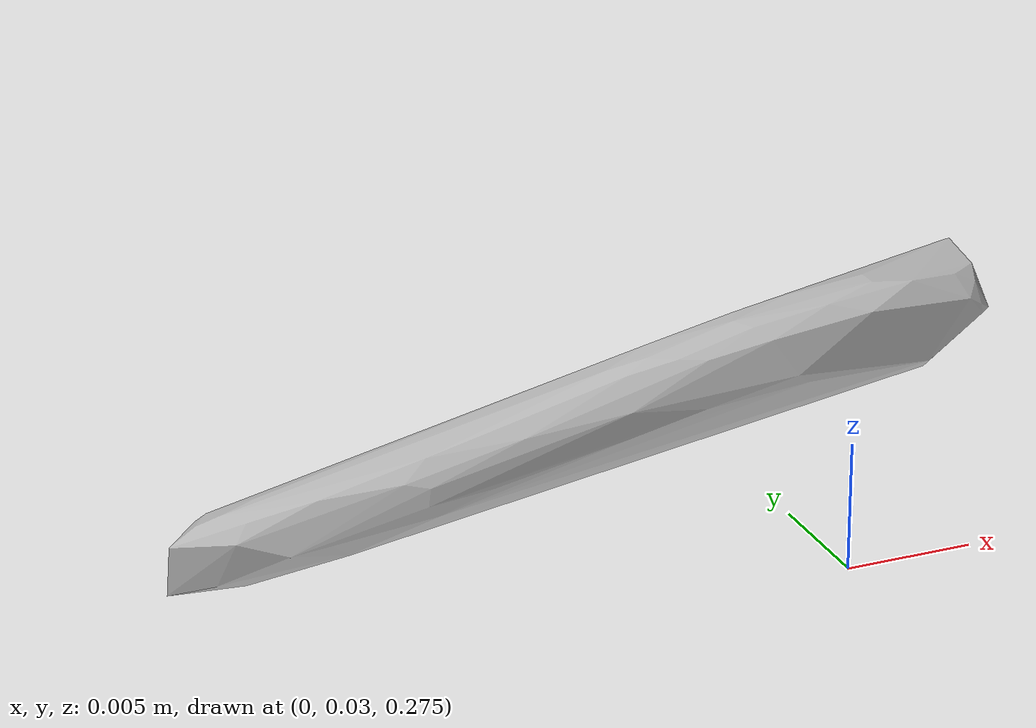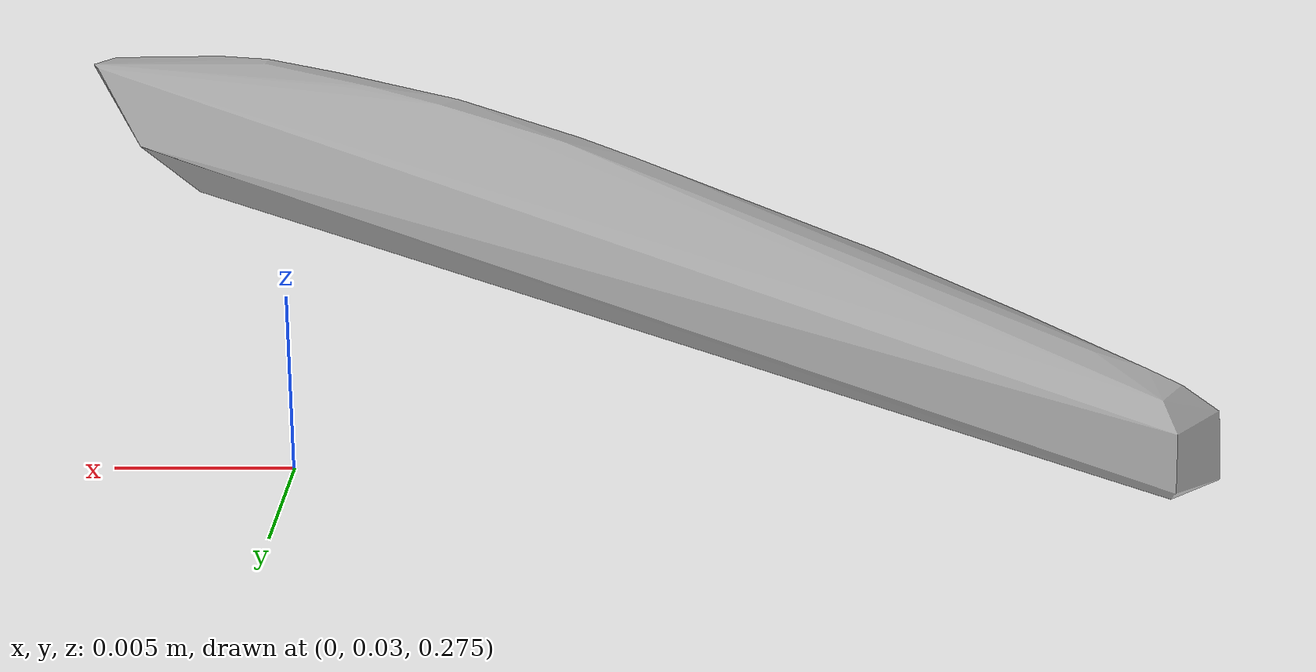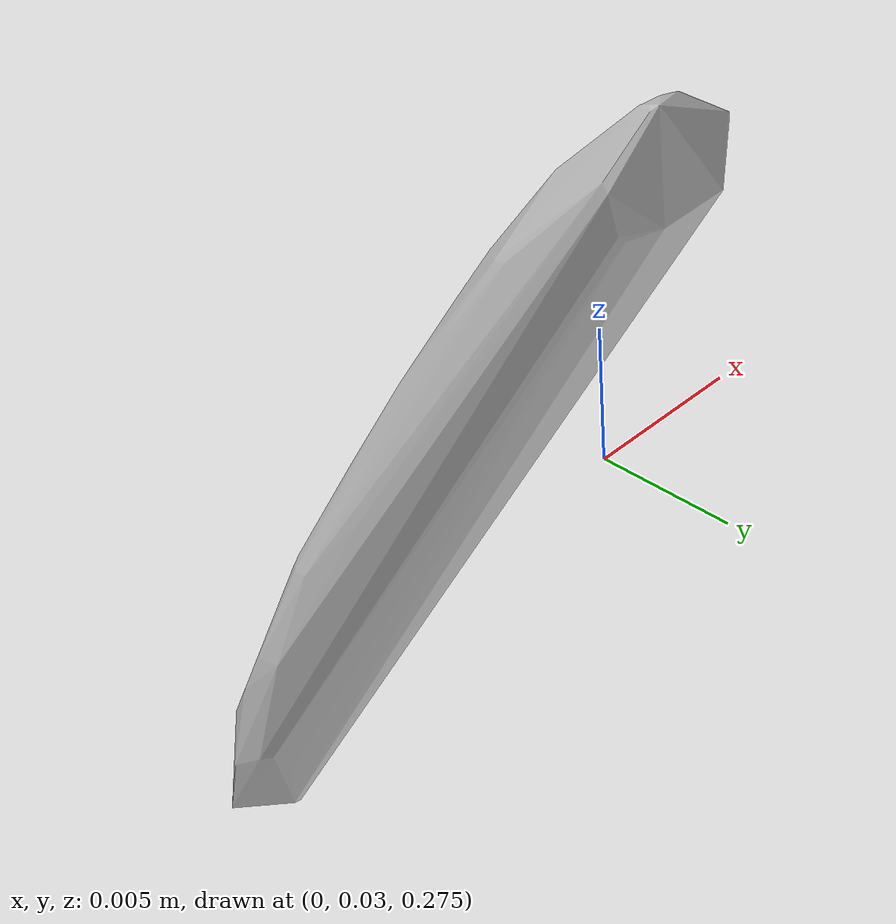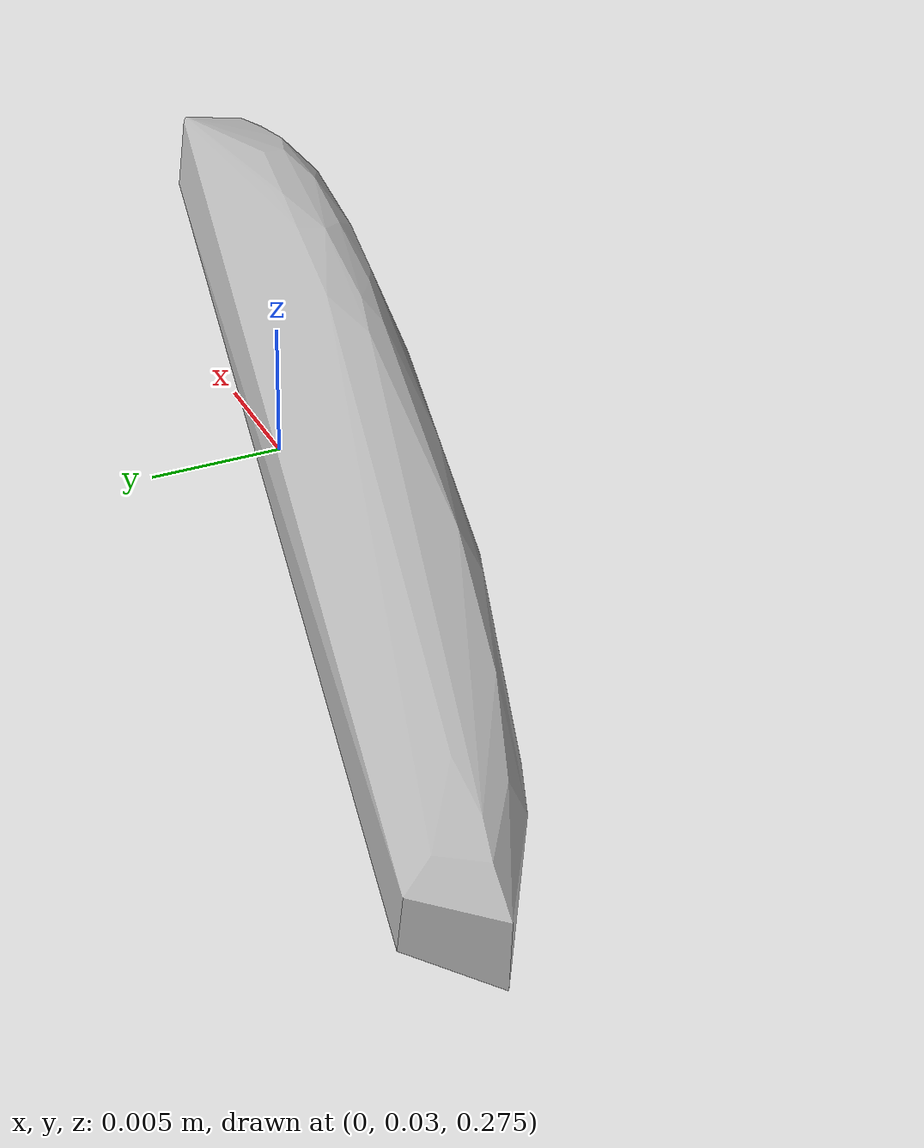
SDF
<?xml version="1.0"?>
<sdf version="1.7">
  <model name="vascular_partexport060">
    <link name="vascular_partexport060_body">
      <visual name="vascular_partexport060_visual">
        <geometry>
          <mesh>
            <uri>vascular_partexport060.obj</uri>
          </mesh>
        </geometry>
      </visual>
      <collision name="vascular_partexport060_collision">
        <geometry>
          <mesh>
            <uri>vascular_partexport060.obj</uri>
          </mesh>
        </geometry>
      </collision>
    </link>
    <frame name="vascular_partexport060_center">
      <pose relative_to="vascular_partexport060_body">0 0 0 0 0 0</pose>
    </frame>
  </model>
</sdf>
